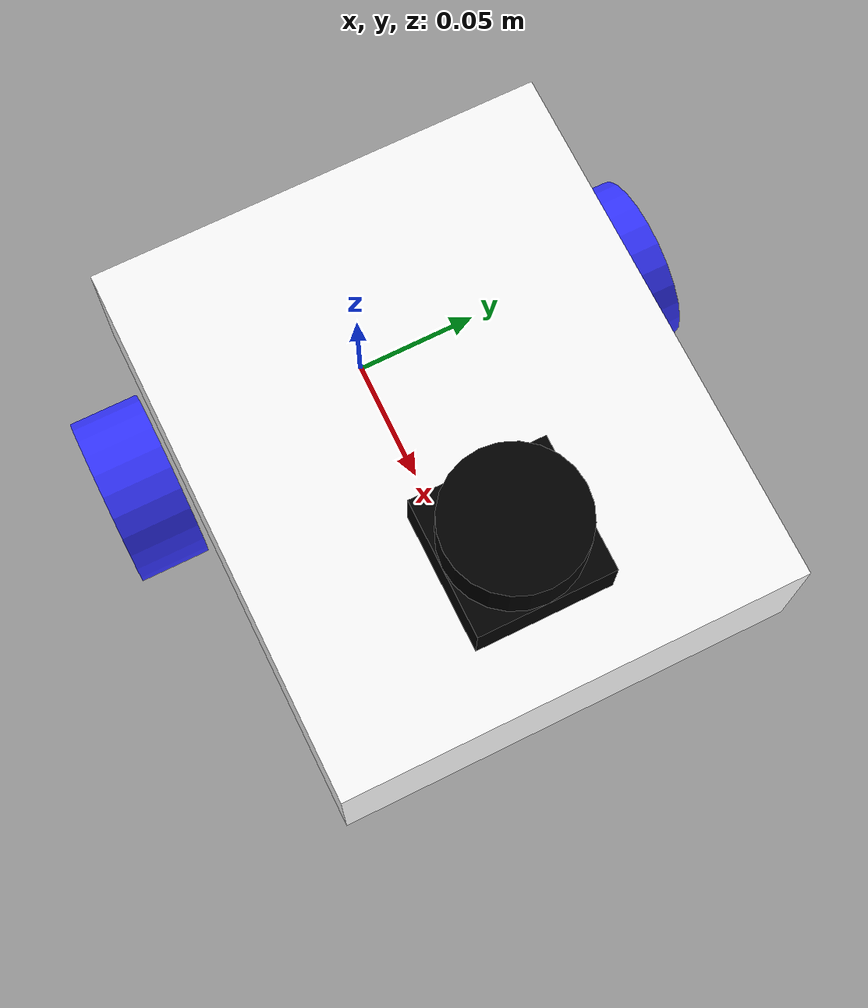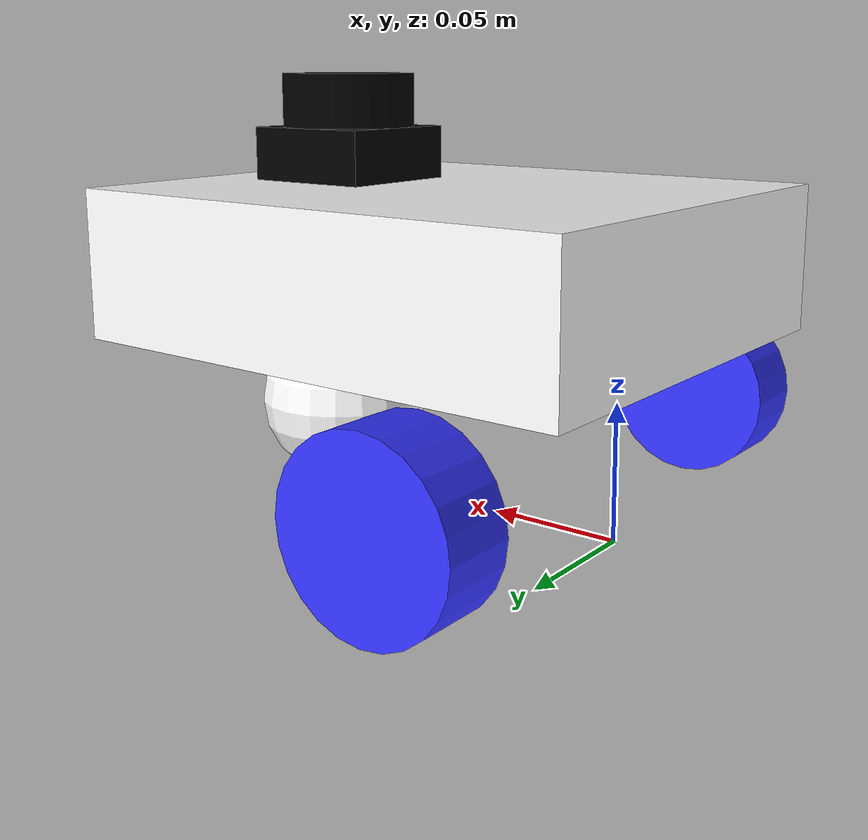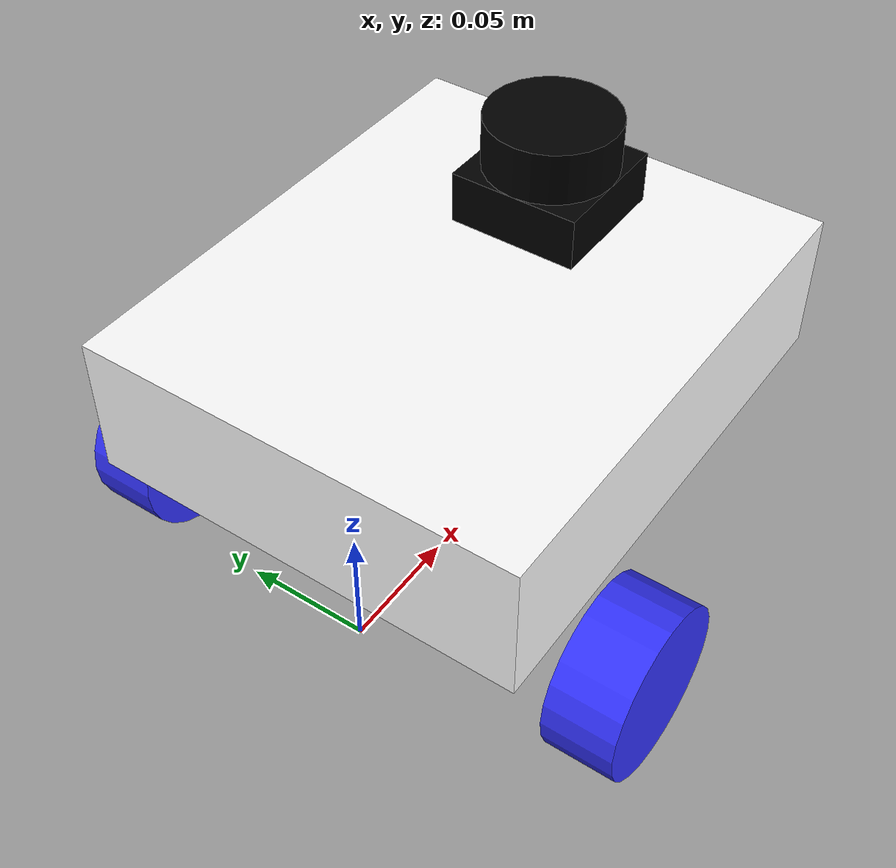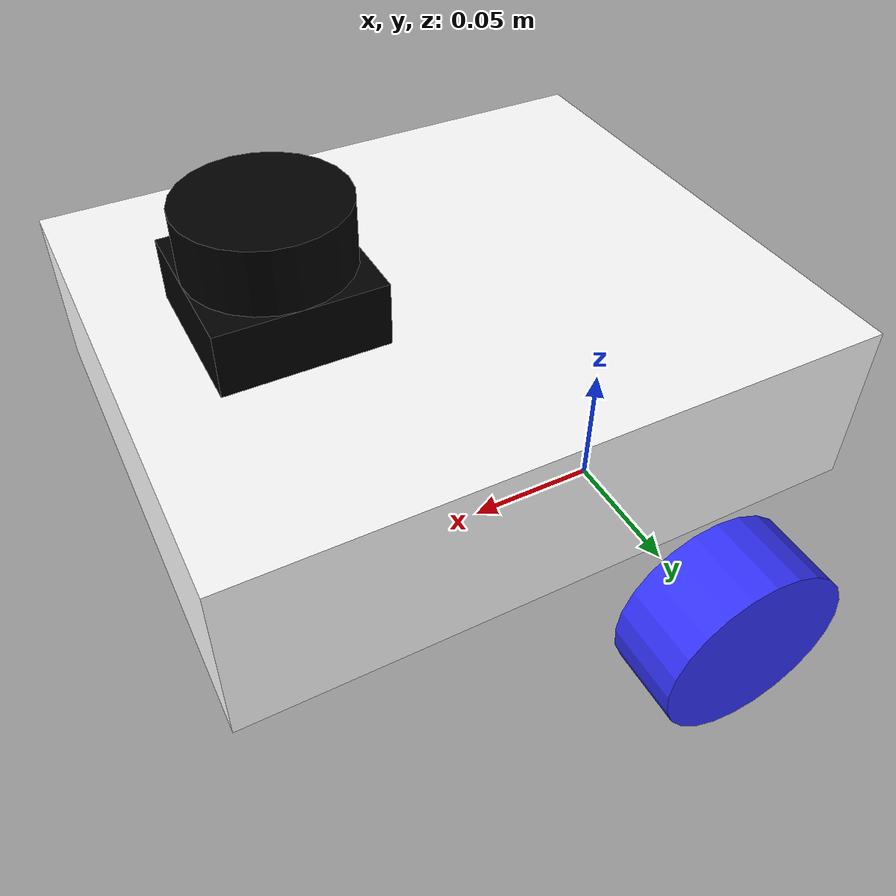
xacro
<?xml version="1.0"?>
<robot xmlns:xacro="http://www.ros.org/wiki/xacro"  name="robot">

    <xacro:arg name="use_ros2_control" default="true"/>
    <xacro:arg name="sim_mode" default="false"/>

    <xacro:include filename="robot_core.xacro" />

    <xacro:if value="$(arg use_ros2_control)">
        <xacro:include filename="ros2_control.xacro" />
    </xacro:if>
    <xacro:unless value="$(arg use_ros2_control)">
        <xacro:include filename="gazebo_control.xacro" />
    </xacro:unless>
    <xacro:include filename="lidar.xacro" />

</robot>

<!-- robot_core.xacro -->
<robot xmlns:xacro="http://www.ros.org/wiki/xacro">

    <xacro:include filename="inertial_macros.xacro"/>

    <material name="white">
        <color rgba="1 1 1 1"/>
    </material>

    <material name="orange">
        <color rgba="1 0.3 0.1 1"/>
    </material>

    <material name="blue">
        <color rgba="0.2 0.2 1 1"/>
    </material>

    <material name="red">
        <color rgba="1 0 0 1"/>
    </material>

    <material name="black">
        <color rgba="0 0 0 1"/>
    </material>

    <!-- BASE LINK -->

    <link name="base_link">

    </link>

    <!-- BASE_FOOTPRINT_LINK -->

    <joint name="base_footprint_joint" type="fixed">
        <parent link="base_link"/>
        <child link="base_footprint"/>
        <origin xyz="0 0 0" rpy="0 0 0"/>
    </joint>

    <link name="base_footprint">
    </link>

    <!-- CHASSIS LINK -->

    <joint name="chassis_joint" type="fixed">
        <parent link="base_link"/>
        <child link="chassis"/>
        <origin xyz="-0.1 0 0"/>
    </joint>

    <link name="chassis">
        <visual>
            <origin xyz="0.17 0 0.0925"/>
            <geometry>
                <box size="0.2 0.17 0.055"/>
            </geometry>
            <material name="white"/>
        </visual>
        <collision>
            <origin xyz="0.17 0 0.0925"/>
            <geometry>
                <box size="0.2 0.17 0.055"/>
            </geometry>
        </collision>
        <xacro:inertial_box mass="0.5" x="0.2" y="0.17" z="0.1">
            <origin xyz="0.17 0 0.0925" rpy="0 0 0"/>
        </xacro:inertial_box>
    </link>

    <gazebo reference="chassis">
        <material>Gazebo/Orange</material>
    </gazebo>

    <!-- LEFT WHEEL LINK -->

    <joint name="left_wheel_joint" type="continuous">
        <parent link="base_link"/>
        <child link="left_wheel"/>
        <origin xyz="0.0175 0.1 0.0325" rpy="-${pi/2} 0 0"/>
        <axis xyz="0 0 1"/>
    </joint>

    <link name="left_wheel">
        <visual>
            <geometry>
                <cylinder radius="0.0325" length="0.027"/>
            </geometry>
            <material name="blue"/>
        </visual>
        <collision>
            <geometry>
                <cylinder radius="0.0325" length="0.027"/>
            </geometry>
        </collision>
        <xacro:inertial_cylinder mass="0.1" length="0.027" radius="0.0325">
            <origin xyz="0 0 0" rpy="0 0 0"/>
        </xacro:inertial_cylinder>
    </link>

    <gazebo reference="left_wheel">
        <material>Gazebo/Blue</material>
    </gazebo>

    <!-- RIGHT WHEEL LINK -->

    <joint name="right_wheel_joint" type="continuous">
        <parent link="base_link"/>
        <child link="right_wheel"/>
        <origin xyz="0.0175 -0.1 0.0325" rpy="${pi/2} 0 0"/>
        <axis xyz="0 0 -1"/>
    </joint>

    <link name="right_wheel">
        <visual>
            <geometry>
                <cylinder radius="0.0325" length="0.027"/>
            </geometry>
            <material name="blue"/>
        </visual>
        <collision>
            <geometry>
                <cylinder radius="0.0325" length="0.027"/>
            </geometry>
        </collision>
        <xacro:inertial_cylinder mass="0.1" length="0.027" radius="0.0325">
            <origin xyz="0 0 0" rpy="0 0 0"/>
        </xacro:inertial_cylinder>
    </link>

    <gazebo reference="right_wheel">
        <material>Gazebo/Blue</material>
    </gazebo>

    <!-- CASTER WHEEL LINK -->

    <joint name="caster_wheel_joint" type="fixed">
        <parent link="chassis"/>
        <child link="caster_wheel"/>
        <origin xyz="0.225 0 0.0325"/>
    </joint>

    <link name="caster_wheel">
        <visual>
            <geometry>
                <sphere radius="0.0325"/>
            </geometry>
            <material name="white"/>
        </visual>
        <collision>
            <geometry>
                <sphere radius="0.0325"/>
            </geometry>
        </collision>
        <xacro:inertial_sphere mass="0.1" radius="0.0325">
            <origin xyz="0 0 0" rpy="0 0 0"/>
        </xacro:inertial_sphere>
    </link>

    <gazebo reference="caster_wheel">
        <material>Gazebo/Black</material>
        <mu1 value="0.001"/>
        <mu2 value="0.001"/>
    </gazebo>

    <!-- เพิ่ม IMU link ใน URDF -->
    <link name="imu_link">
    <visual>
        <geometry>
        <box size="0.02 0.02 0.01"/>
        </geometry>
        <material name="red"/>
    </visual>
    </link>

    <joint name="imu_joint" type="fixed">
    <parent link="chassis"/>
    <child link="imu_link"/>
    <origin xyz="0.15 0 0.095" rpy="0 0 0"/>
    </joint>

</robot>

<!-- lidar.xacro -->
<robot xmlns:xacro="http://www.ros.org/wiki/xacro"  name="robot">

    <joint name="laser_joint" type="fixed">
        <parent link="chassis"/>
        <child link="laser"/>
        <origin xyz="0.22 0 0.15" rpy="0 0 ${pi}"/>
    </joint>

    <link name="laser">
        <visual>
            <geometry>
                <cylinder radius="0.025" length="0.02"/>
            </geometry>
            <material name="black"/>
        </visual>
        <visual>
            <origin xyz="0 0 -0.02"/>
            <geometry>
                <box size="0.05 0.05 0.02"/>
            </geometry>
            <material name="black"/>
        </visual>
        <collision>
            <geometry>
                <cylinder radius="0.025" length="0.02"/>
            </geometry>
        </collision>
        <xacro:inertial_cylinder mass="0.1" length="0.02" radius="0.025">
            <origin xyz="0 0 0" rpy="0 0 0"/>
        </xacro:inertial_cylinder>
    </link>

    <gazebo reference="laser_frame">
        <material>Gazebo/Red</material>
        <sensor name="laser" type="ray">
            <pose> 0 0 0 0</pose>
            <visualize>false</visualize>
            <update_rate>10</update_rate>
            <ray>
                <scan>
                    <horizontal>
                        <sample>360</sample>
                        <resolution>1</resolution>
                        <min_angle>-3.14</min_angle>
                        <max_angle>3.14</max_angle>
                    </horizontal>
                </scan>
                <range>
                    <min>0.3</min>
                    <max>5</max>
                    <resolution>0.01</resolution>
                </range>
            </ray>
            <plugin name="laser_controller" filename="libgazebo_ros_ray_sensor.so">
                <ros>
                    <argument>~/out:=scan</argument>
                </ros>
                <output_type>sensor_msgs/LaserScan</output_type>
                <frame_name>laser_frame</frame_name>
            </plugin>
        </sensor>

    </gazebo>
</robot>
